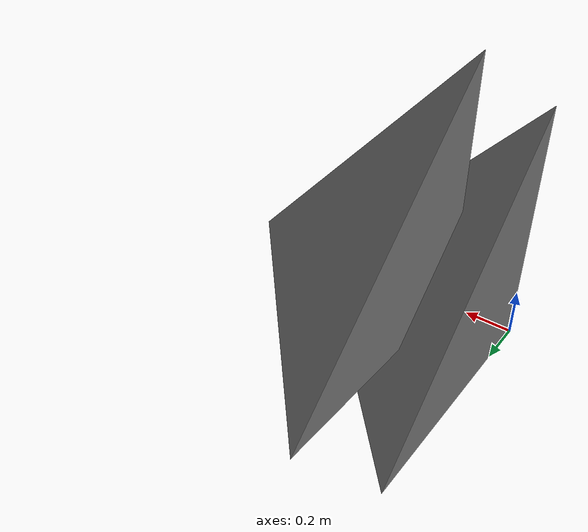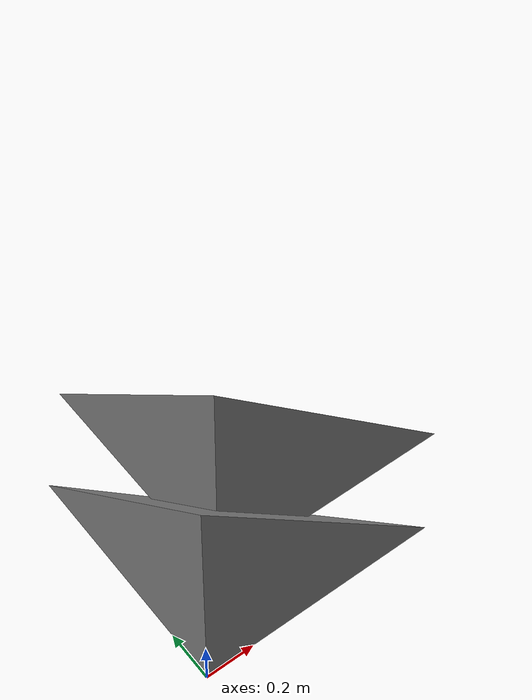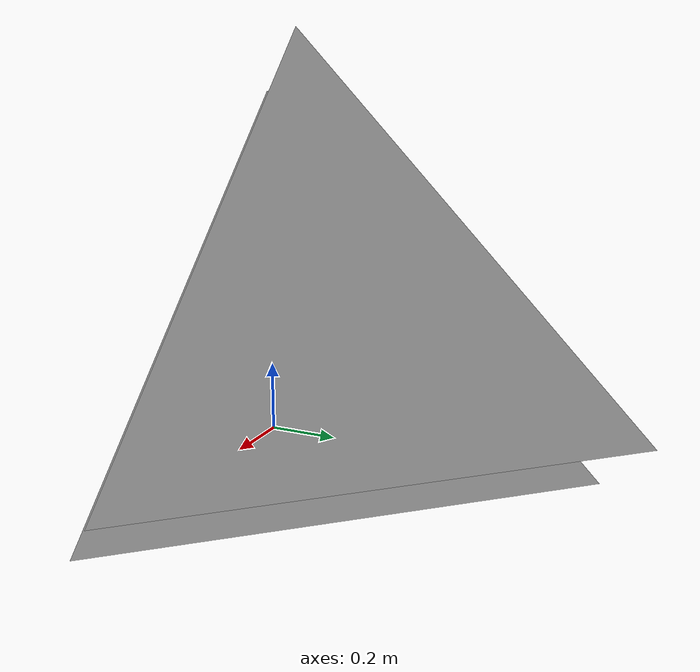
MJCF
<mujoco model="contact_dynamic_mesh_mesh">
  <option gravity="0 0 0" timestep="0.005"/>
  <asset>
    <mesh name="tetra" vertex="0 0 0 1 0 0 0 1 0 0 0 1"
          face="0 2 1 0 1 3 0 3 2 1 2 3"/>
  </asset>
  <contact>
    <pair geom1="mesh_static" geom2="mesh_tumble"/>
  </contact>
  <worldbody>
    <geom name="mesh_static" type="mesh" mesh="tetra"/>
    <body name="mesh_body" pos="0.2 0.2 0.2">
      <freejoint/>
      <inertial pos="0 0 0" mass="1" diaginertia="0.166667 0.166667 0.166667"/>
      <geom name="mesh_tumble" type="mesh" mesh="tetra"/>
    </body>
  </worldbody>
</mujoco>
